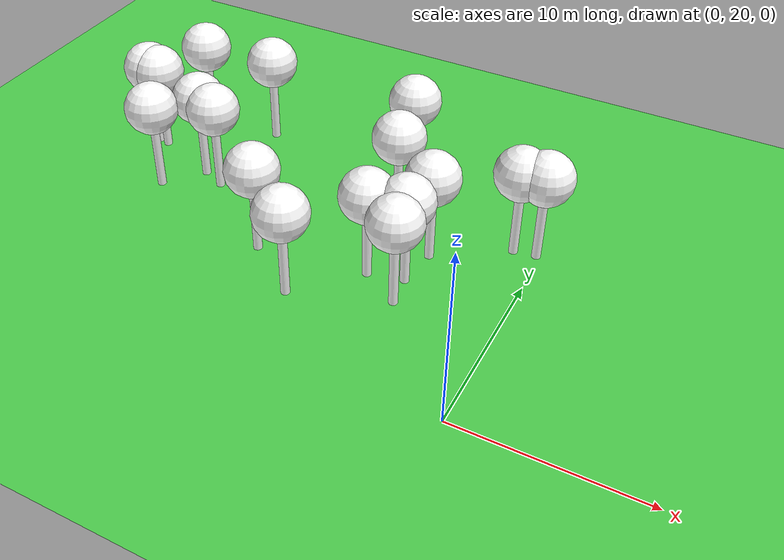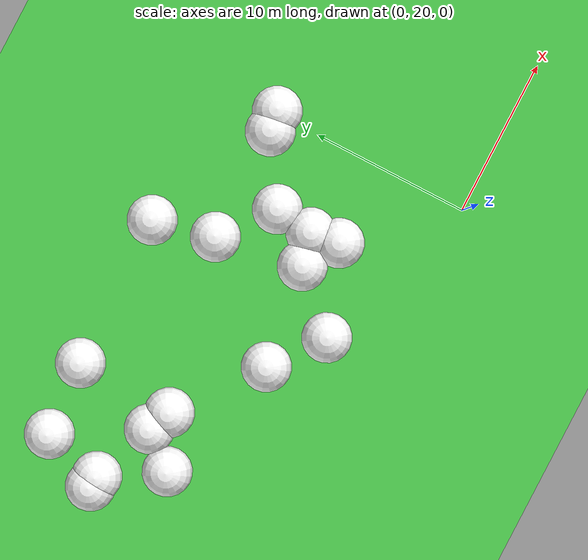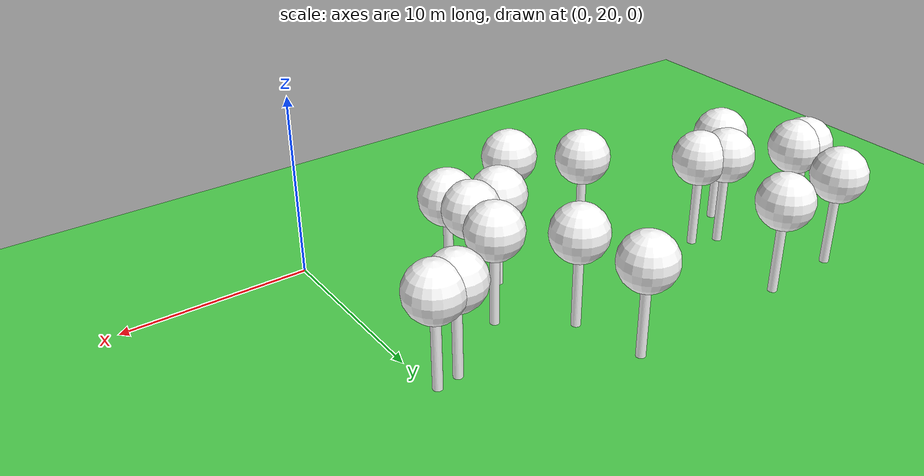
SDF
<sdf version="1.8">
 <world name="forest_world">
  <model name="tree_simple492">
   <static>1</static>
   <link name="link">
    <pose>0 0 0.1 0 -0 0</pose>
    <collision name="collision_trunk">
     <pose>0 0 2 0 -0 0</pose>
     <geometry><cylinder><radius>0.25</radius><length>4</length></cylinder></geometry>
    </collision>
    <collision name="collision_treetop">
     <pose>0 0 5.2 0 -0 0</pose>
     <geometry><sphere><radius>1.5</radius></sphere></geometry>
    </collision>
    <visual name="trunk_492">
     <pose>0 0 2 0 -0 0</pose>
     <geometry><cylinder><radius>0.25</radius><length>4</length></cylinder></geometry>
     <material>
      <ambient>0.5 0.5 0.5 1</ambient>
      <diffuse>1.0 1.0 1.0 1</diffuse>
      <specular>0.0 0.0 0.0 1</specular>
      <pbr>
       <metal>
        <albedo_map>file://textures/tree_simple_trunk.jpg</albedo_map>
        <metalness>0.0</metalness>
        <roughness>0.8</roughness>
       </metal>
      </pbr>
     </material>
    </visual>
    <visual name="treetop_492">
     <pose>0 0 5.2 0 -0 0</pose>
     <geometry><sphere><radius>1.5</radius></sphere></geometry>
     <material>
      <ambient>0.5 0.5 0.5 1</ambient>
      <diffuse>1.0 1.0 1.0 1</diffuse>
      <specular>0.0 0.0 0.0 1</specular>
      <pbr>
       <metal>
        <albedo_map>file://textures/tree_simple_treetop.jpg</albedo_map>
        <metalness>0.0</metalness>
        <roughness>0.9</roughness>
       </metal>
      </pbr>
     </material>
    </visual>
   </link>
   <pose>-7.60604313382 27.1336498888 0 0 -0 0</pose>
  </model>
  <model name="tree_simple477">
   <static>1</static>
   <link name="link">
    <pose>0 0 0.1 0 -0 0</pose>
    <collision name="collision_trunk">
     <pose>0 0 2 0 -0 0</pose>
     <geometry><cylinder><radius>0.25</radius><length>4</length></cylinder></geometry>
    </collision>
    <collision name="collision_treetop">
     <pose>0 0 5.2 0 -0 0</pose>
     <geometry><sphere><radius>1.5</radius></sphere></geometry>
    </collision>
    <visual name="trunk_477">
     <pose>0 0 2 0 -0 0</pose>
     <geometry><cylinder><radius>0.25</radius><length>4</length></cylinder></geometry>
     <material>
      <ambient>0.5 0.5 0.5 1</ambient>
      <diffuse>1.0 1.0 1.0 1</diffuse>
      <specular>0.0 0.0 0.0 1</specular>
      <pbr>
       <metal>
        <albedo_map>file://textures/tree_simple_trunk.jpg</albedo_map>
        <metalness>0.0</metalness>
        <roughness>0.8</roughness>
       </metal>
      </pbr>
     </material>
    </visual>
    <visual name="treetop_477">
     <pose>0 0 5.2 0 -0 0</pose>
     <geometry><sphere><radius>1.5</radius></sphere></geometry>
     <material>
      <ambient>0.5 0.5 0.5 1</ambient>
      <diffuse>1.0 1.0 1.0 1</diffuse>
      <specular>0.0 0.0 0.0 1</specular>
      <pbr>
       <metal>
        <albedo_map>file://textures/tree_simple_treetop.jpg</albedo_map>
        <metalness>0.0</metalness>
        <roughness>0.9</roughness>
       </metal>
      </pbr>
     </material>
    </visual>
   </link>
   <pose>-0.22927085135 32.6495918535 0 0 -0 0</pose>
  </model>
  <model name="tree_simple425">
   <static>1</static>
   <link name="link">
    <pose>0 0 0.1 0 -0 0</pose>
    <collision name="collision_trunk">
     <pose>0 0 2 0 -0 0</pose>
     <geometry><cylinder><radius>0.25</radius><length>4</length></cylinder></geometry>
    </collision>
    <collision name="collision_treetop">
     <pose>0 0 5.2 0 -0 0</pose>
     <geometry><sphere><radius>1.5</radius></sphere></geometry>
    </collision>
    <visual name="trunk_425">
     <pose>0 0 2 0 -0 0</pose>
     <geometry><cylinder><radius>0.25</radius><length>4</length></cylinder></geometry>
     <material>
      <ambient>0.5 0.5 0.5 1</ambient>
      <diffuse>1.0 1.0 1.0 1</diffuse>
      <specular>0.0 0.0 0.0 1</specular>
      <pbr>
       <metal>
        <albedo_map>file://textures/tree_simple_trunk.jpg</albedo_map>
        <metalness>0.0</metalness>
        <roughness>0.8</roughness>
       </metal>
      </pbr>
     </material>
    </visual>
    <visual name="treetop_425">
     <pose>0 0 5.2 0 -0 0</pose>
     <geometry><sphere><radius>1.5</radius></sphere></geometry>
     <material>
      <ambient>0.5 0.5 0.5 1</ambient>
      <diffuse>1.0 1.0 1.0 1</diffuse>
      <specular>0.0 0.0 0.0 1</specular>
      <pbr>
       <metal>
        <albedo_map>file://textures/tree_simple_treetop.jpg</albedo_map>
        <metalness>0.0</metalness>
        <roughness>0.9</roughness>
       </metal>
      </pbr>
     </material>
    </visual>
   </link>
   <pose>-9.294152574 36.1907172759 0 0 -0 0</pose>
  </model>
  <model name="tree_simple409">
   <static>1</static>
   <link name="link">
    <pose>0 0 0.1 0 -0 0</pose>
    <collision name="collision_trunk">
     <pose>0 0 2 0 -0 0</pose>
     <geometry><cylinder><radius>0.25</radius><length>4</length></cylinder></geometry>
    </collision>
    <collision name="collision_treetop">
     <pose>0 0 5.2 0 -0 0</pose>
     <geometry><sphere><radius>1.5</radius></sphere></geometry>
    </collision>
    <visual name="trunk_409">
     <pose>0 0 2 0 -0 0</pose>
     <geometry><cylinder><radius>0.25</radius><length>4</length></cylinder></geometry>
     <material>
      <ambient>0.5 0.5 0.5 1</ambient>
      <diffuse>1.0 1.0 1.0 1</diffuse>
      <specular>0.0 0.0 0.0 1</specular>
      <pbr>
       <metal>
        <albedo_map>file://textures/tree_simple_trunk.jpg</albedo_map>
        <metalness>0.0</metalness>
        <roughness>0.8</roughness>
       </metal>
      </pbr>
     </material>
    </visual>
    <visual name="treetop_409">
     <pose>0 0 5.2 0 -0 0</pose>
     <geometry><sphere><radius>1.5</radius></sphere></geometry>
     <material>
      <ambient>0.5 0.5 0.5 1</ambient>
      <diffuse>1.0 1.0 1.0 1</diffuse>
      <specular>0.0 0.0 0.0 1</specular>
      <pbr>
       <metal>
        <albedo_map>file://textures/tree_simple_treetop.jpg</albedo_map>
        <metalness>0.0</metalness>
        <roughness>0.9</roughness>
       </metal>
      </pbr>
     </material>
    </visual>
   </link>
   <pose>-23.2045481925 35.7189479207 0 0 -0 0</pose>
  </model>
  <model name="tree_simple398">
   <static>1</static>
   <link name="link">
    <pose>0 0 0.1 0 -0 0</pose>
    <collision name="collision_trunk">
     <pose>0 0 2 0 -0 0</pose>
     <geometry><cylinder><radius>0.25</radius><length>4</length></cylinder></geometry>
    </collision>
    <collision name="collision_treetop">
     <pose>0 0 5.2 0 -0 0</pose>
     <geometry><sphere><radius>1.5</radius></sphere></geometry>
    </collision>
    <visual name="trunk_398">
     <pose>0 0 2 0 -0 0</pose>
     <geometry><cylinder><radius>0.25</radius><length>4</length></cylinder></geometry>
     <material>
      <ambient>0.5 0.5 0.5 1</ambient>
      <diffuse>1.0 1.0 1.0 1</diffuse>
      <specular>0.0 0.0 0.0 1</specular>
      <pbr>
       <metal>
        <albedo_map>file://textures/tree_simple_trunk.jpg</albedo_map>
        <metalness>0.0</metalness>
        <roughness>0.8</roughness>
       </metal>
      </pbr>
     </material>
    </visual>
    <visual name="treetop_398">
     <pose>0 0 5.2 0 -0 0</pose>
     <geometry><sphere><radius>1.5</radius></sphere></geometry>
     <material>
      <ambient>0.5 0.5 0.5 1</ambient>
      <diffuse>1.0 1.0 1.0 1</diffuse>
      <specular>0.0 0.0 0.0 1</specular>
      <pbr>
       <metal>
        <albedo_map>file://textures/tree_simple_treetop.jpg</albedo_map>
        <metalness>0.0</metalness>
        <roughness>0.9</roughness>
       </metal>
      </pbr>
     </material>
    </visual>
   </link>
   <pose>-5.63129043723 27.5985943182 0 0 -0 0</pose>
  </model>
  <model name="tree_simple359">
   <static>1</static>
   <link name="link">
    <pose>0 0 0.1 0 -0 0</pose>
    <collision name="collision_trunk">
     <pose>0 0 2 0 -0 0</pose>
     <geometry><cylinder><radius>0.25</radius><length>4</length></cylinder></geometry>
    </collision>
    <collision name="collision_treetop">
     <pose>0 0 5.2 0 -0 0</pose>
     <geometry><sphere><radius>1.5</radius></sphere></geometry>
    </collision>
    <visual name="trunk_359">
     <pose>0 0 2 0 -0 0</pose>
     <geometry><cylinder><radius>0.25</radius><length>4</length></cylinder></geometry>
     <material>
      <ambient>0.5 0.5 0.5 1</ambient>
      <diffuse>1.0 1.0 1.0 1</diffuse>
      <specular>0.0 0.0 0.0 1</specular>
      <pbr>
       <metal>
        <albedo_map>file://textures/tree_simple_trunk.jpg</albedo_map>
        <metalness>0.0</metalness>
        <roughness>0.8</roughness>
       </metal>
      </pbr>
     </material>
    </visual>
    <visual name="treetop_359">
     <pose>0 0 5.2 0 -0 0</pose>
     <geometry><sphere><radius>1.5</radius></sphere></geometry>
     <material>
      <ambient>0.5 0.5 0.5 1</ambient>
      <diffuse>1.0 1.0 1.0 1</diffuse>
      <specular>0.0 0.0 0.0 1</specular>
      <pbr>
       <metal>
        <albedo_map>file://textures/tree_simple_treetop.jpg</albedo_map>
        <metalness>0.0</metalness>
        <roughness>0.9</roughness>
       </metal>
      </pbr>
     </material>
    </visual>
   </link>
   <pose>-20.2372130322 30.6626507403 0 0 -0 0</pose>
  </model>
  <model name="tree_simple353">
   <static>1</static>
   <link name="link">
    <pose>0 0 0.1 0 -0 0</pose>
    <collision name="collision_trunk">
     <pose>0 0 2 0 -0 0</pose>
     <geometry><cylinder><radius>0.25</radius><length>4</length></cylinder></geometry>
    </collision>
    <collision name="collision_treetop">
     <pose>0 0 5.2 0 -0 0</pose>
     <geometry><sphere><radius>1.5</radius></sphere></geometry>
    </collision>
    <visual name="trunk_353">
     <pose>0 0 2 0 -0 0</pose>
     <geometry><cylinder><radius>0.25</radius><length>4</length></cylinder></geometry>
     <material>
      <ambient>0.5 0.5 0.5 1</ambient>
      <diffuse>1.0 1.0 1.0 1</diffuse>
      <specular>0.0 0.0 0.0 1</specular>
      <pbr>
       <metal>
        <albedo_map>file://textures/tree_simple_trunk.jpg</albedo_map>
        <metalness>0.0</metalness>
        <roughness>0.8</roughness>
       </metal>
      </pbr>
     </material>
    </visual>
    <visual name="treetop_353">
     <pose>0 0 5.2 0 -0 0</pose>
     <geometry><sphere><radius>1.5</radius></sphere></geometry>
     <material>
      <ambient>0.5 0.5 0.5 1</ambient>
      <diffuse>1.0 1.0 1.0 1</diffuse>
      <specular>0.0 0.0 0.0 1</specular>
      <pbr>
       <metal>
        <albedo_map>file://textures/tree_simple_treetop.jpg</albedo_map>
        <metalness>0.0</metalness>
        <roughness>0.9</roughness>
       </metal>
      </pbr>
     </material>
    </visual>
   </link>
   <pose>-8.45318639894 32.4449291469 0 0 -0 0</pose>
  </model>
  <model name="tree_simple310">
   <static>1</static>
   <link name="link">
    <pose>0 0 0.1 0 -0 0</pose>
    <collision name="collision_trunk">
     <pose>0 0 2 0 -0 0</pose>
     <geometry><cylinder><radius>0.25</radius><length>4</length></cylinder></geometry>
    </collision>
    <collision name="collision_treetop">
     <pose>0 0 5.2 0 -0 0</pose>
     <geometry><sphere><radius>1.5</radius></sphere></geometry>
    </collision>
    <visual name="trunk_310">
     <pose>0 0 2 0 -0 0</pose>
     <geometry><cylinder><radius>0.25</radius><length>4</length></cylinder></geometry>
     <material>
      <ambient>0.5 0.5 0.5 1</ambient>
      <diffuse>1.0 1.0 1.0 1</diffuse>
      <specular>0.0 0.0 0.0 1</specular>
      <pbr>
       <metal>
        <albedo_map>file://textures/tree_simple_trunk.jpg</albedo_map>
        <metalness>0.0</metalness>
        <roughness>0.8</roughness>
       </metal>
      </pbr>
     </material>
    </visual>
    <visual name="treetop_310">
     <pose>0 0 5.2 0 -0 0</pose>
     <geometry><sphere><radius>1.5</radius></sphere></geometry>
     <material>
      <ambient>0.5 0.5 0.5 1</ambient>
      <diffuse>1.0 1.0 1.0 1</diffuse>
      <specular>0.0 0.0 0.0 1</specular>
      <pbr>
       <metal>
        <albedo_map>file://textures/tree_simple_treetop.jpg</albedo_map>
        <metalness>0.0</metalness>
        <roughness>0.9</roughness>
       </metal>
      </pbr>
     </material>
    </visual>
   </link>
   <pose>-24.1249967054 32.1060106323 0 0 -0 0</pose>
  </model>
  <model name="tree_simple299">
   <static>1</static>
   <link name="link">
    <pose>0 0 0.1 0 -0 0</pose>
    <collision name="collision_trunk">
     <pose>0 0 2 0 -0 0</pose>
     <geometry><cylinder><radius>0.25</radius><length>4</length></cylinder></geometry>
    </collision>
    <collision name="collision_treetop">
     <pose>0 0 5.2 0 -0 0</pose>
     <geometry><sphere><radius>1.5</radius></sphere></geometry>
    </collision>
    <visual name="trunk_299">
     <pose>0 0 2 0 -0 0</pose>
     <geometry><cylinder><radius>0.25</radius><length>4</length></cylinder></geometry>
     <material>
      <ambient>0.5 0.5 0.5 1</ambient>
      <diffuse>1.0 1.0 1.0 1</diffuse>
      <specular>0.0 0.0 0.0 1</specular>
      <pbr>
       <metal>
        <albedo_map>file://textures/tree_simple_trunk.jpg</albedo_map>
        <metalness>0.0</metalness>
        <roughness>0.8</roughness>
       </metal>
      </pbr>
     </material>
    </visual>
    <visual name="treetop_299">
     <pose>0 0 5.2 0 -0 0</pose>
     <geometry><sphere><radius>1.5</radius></sphere></geometry>
     <material>
      <ambient>0.5 0.5 0.5 1</ambient>
      <diffuse>1.0 1.0 1.0 1</diffuse>
      <specular>0.0 0.0 0.0 1</specular>
      <pbr>
       <metal>
        <albedo_map>file://textures/tree_simple_treetop.jpg</albedo_map>
        <metalness>0.0</metalness>
        <roughness>0.9</roughness>
       </metal>
      </pbr>
     </material>
    </visual>
   </link>
   <pose>-1.46806320409 32.459422197 0 0 -0 0</pose>
  </model>
  <model name="tree_simple183">
   <static>1</static>
   <link name="link">
    <pose>0 0 0.1 0 -0 0</pose>
    <collision name="collision_trunk">
     <pose>0 0 2 0 -0 0</pose>
     <geometry><cylinder><radius>0.25</radius><length>4</length></cylinder></geometry>
    </collision>
    <collision name="collision_treetop">
     <pose>0 0 5.2 0 -0 0</pose>
     <geometry><sphere><radius>1.5</radius></sphere></geometry>
    </collision>
    <visual name="trunk_183">
     <pose>0 0 2 0 -0 0</pose>
     <geometry><cylinder><radius>0.25</radius><length>4</length></cylinder></geometry>
     <material>
      <ambient>0.5 0.5 0.5 1</ambient>
      <diffuse>1.0 1.0 1.0 1</diffuse>
      <specular>0.0 0.0 0.0 1</specular>
      <pbr>
       <metal>
        <albedo_map>file://textures/tree_simple_trunk.jpg</albedo_map>
        <metalness>0.0</metalness>
        <roughness>0.8</roughness>
       </metal>
      </pbr>
     </material>
    </visual>
    <visual name="treetop_183">
     <pose>0 0 5.2 0 -0 0</pose>
     <geometry><sphere><radius>1.5</radius></sphere></geometry>
     <material>
      <ambient>0.5 0.5 0.5 1</ambient>
      <diffuse>1.0 1.0 1.0 1</diffuse>
      <specular>0.0 0.0 0.0 1</specular>
      <pbr>
       <metal>
        <albedo_map>file://textures/tree_simple_treetop.jpg</albedo_map>
        <metalness>0.0</metalness>
        <roughness>0.9</roughness>
       </metal>
      </pbr>
     </material>
    </visual>
   </link>
   <pose>-24.8051767245 32.1734283562 0 0 -0 0</pose>
  </model>
  <model name="tree_simple116">
   <static>1</static>
   <link name="link">
    <pose>0 0 0.1 0 -0 0</pose>
    <collision name="collision_trunk">
     <pose>0 0 2 0 -0 0</pose>
     <geometry><cylinder><radius>0.25</radius><length>4</length></cylinder></geometry>
    </collision>
    <collision name="collision_treetop">
     <pose>0 0 5.2 0 -0 0</pose>
     <geometry><sphere><radius>1.5</radius></sphere></geometry>
    </collision>
    <visual name="trunk_116">
     <pose>0 0 2 0 -0 0</pose>
     <geometry><cylinder><radius>0.25</radius><length>4</length></cylinder></geometry>
     <material>
      <ambient>0.5 0.5 0.5 1</ambient>
      <diffuse>1.0 1.0 1.0 1</diffuse>
      <specular>0.0 0.0 0.0 1</specular>
      <pbr>
       <metal>
        <albedo_map>file://textures/tree_simple_trunk.jpg</albedo_map>
        <metalness>0.0</metalness>
        <roughness>0.8</roughness>
       </metal>
      </pbr>
     </material>
    </visual>
    <visual name="treetop_116">
     <pose>0 0 5.2 0 -0 0</pose>
     <geometry><sphere><radius>1.5</radius></sphere></geometry>
     <material>
      <ambient>0.5 0.5 0.5 1</ambient>
      <diffuse>1.0 1.0 1.0 1</diffuse>
      <specular>0.0 0.0 0.0 1</specular>
      <pbr>
       <metal>
        <albedo_map>file://textures/tree_simple_treetop.jpg</albedo_map>
        <metalness>0.0</metalness>
        <roughness>0.9</roughness>
       </metal>
      </pbr>
     </material>
    </visual>
   </link>
   <pose>-18.6791358841 36.0330135093 0 0 -0 0</pose>
  </model>
  <model name="tree_simple110">
   <static>1</static>
   <link name="link">
    <pose>0 0 0.1 0 -0 0</pose>
    <collision name="collision_trunk">
     <pose>0 0 2 0 -0 0</pose>
     <geometry><cylinder><radius>0.25</radius><length>4</length></cylinder></geometry>
    </collision>
    <collision name="collision_treetop">
     <pose>0 0 5.2 0 -0 0</pose>
     <geometry><sphere><radius>1.5</radius></sphere></geometry>
    </collision>
    <visual name="trunk_110">
     <pose>0 0 2 0 -0 0</pose>
     <geometry><cylinder><radius>0.25</radius><length>4</length></cylinder></geometry>
     <material>
      <ambient>0.5 0.5 0.5 1</ambient>
      <diffuse>1.0 1.0 1.0 1</diffuse>
      <specular>0.0 0.0 0.0 1</specular>
      <pbr>
       <metal>
        <albedo_map>file://textures/tree_simple_trunk.jpg</albedo_map>
        <metalness>0.0</metalness>
        <roughness>0.8</roughness>
       </metal>
      </pbr>
     </material>
    </visual>
    <visual name="treetop_110">
     <pose>0 0 5.2 0 -0 0</pose>
     <geometry><sphere><radius>1.5</radius></sphere></geometry>
     <material>
      <ambient>0.5 0.5 0.5 1</ambient>
      <diffuse>1.0 1.0 1.0 1</diffuse>
      <specular>0.0 0.0 0.0 1</specular>
      <pbr>
       <metal>
        <albedo_map>file://textures/tree_simple_treetop.jpg</albedo_map>
        <metalness>0.0</metalness>
        <roughness>0.9</roughness>
       </metal>
      </pbr>
     </material>
    </visual>
   </link>
   <pose>-5.41034027226 25.8326134986 0 0 -0 0</pose>
  </model>
  <model name="tree_simple104">
   <static>1</static>
   <link name="link">
    <pose>0 0 0.1 0 -0 0</pose>
    <collision name="collision_trunk">
     <pose>0 0 2 0 -0 0</pose>
     <geometry><cylinder><radius>0.25</radius><length>4</length></cylinder></geometry>
    </collision>
    <collision name="collision_treetop">
     <pose>0 0 5.2 0 -0 0</pose>
     <geometry><sphere><radius>1.5</radius></sphere></geometry>
    </collision>
    <visual name="trunk_104">
     <pose>0 0 2 0 -0 0</pose>
     <geometry><cylinder><radius>0.25</radius><length>4</length></cylinder></geometry>
     <material>
      <ambient>0.5 0.5 0.5 1</ambient>
      <diffuse>1.0 1.0 1.0 1</diffuse>
      <specular>0.0 0.0 0.0 1</specular>
      <pbr>
       <metal>
        <albedo_map>file://textures/tree_simple_trunk.jpg</albedo_map>
        <metalness>0.0</metalness>
        <roughness>0.8</roughness>
       </metal>
      </pbr>
     </material>
    </visual>
    <visual name="treetop_104">
     <pose>0 0 5.2 0 -0 0</pose>
     <geometry><sphere><radius>1.5</radius></sphere></geometry>
     <material>
      <ambient>0.5 0.5 0.5 1</ambient>
      <diffuse>1.0 1.0 1.0 1</diffuse>
      <specular>0.0 0.0 0.0 1</specular>
      <pbr>
       <metal>
        <albedo_map>file://textures/tree_simple_treetop.jpg</albedo_map>
        <metalness>0.0</metalness>
        <roughness>0.9</roughness>
       </metal>
      </pbr>
     </material>
    </visual>
   </link>
   <pose>-21.9670509501 28.5770993943 0 0 -0 0</pose>
  </model>
  <model name="tree_simple77">
   <static>1</static>
   <link name="link">
    <pose>0 0 0.1 0 -0 0</pose>
    <collision name="collision_trunk">
     <pose>0 0 2 0 -0 0</pose>
     <geometry><cylinder><radius>0.25</radius><length>4</length></cylinder></geometry>
    </collision>
    <collision name="collision_treetop">
     <pose>0 0 5.2 0 -0 0</pose>
     <geometry><sphere><radius>1.5</radius></sphere></geometry>
    </collision>
    <visual name="trunk_77">
     <pose>0 0 2 0 -0 0</pose>
     <geometry><cylinder><radius>0.25</radius><length>4</length></cylinder></geometry>
     <material>
      <ambient>0.5 0.5 0.5 1</ambient>
      <diffuse>1.0 1.0 1.0 1</diffuse>
      <specular>0.0 0.0 0.0 1</specular>
      <pbr>
       <metal>
        <albedo_map>file://textures/tree_simple_trunk.jpg</albedo_map>
        <metalness>0.0</metalness>
        <roughness>0.8</roughness>
       </metal>
      </pbr>
     </material>
    </visual>
    <visual name="treetop_77">
     <pose>0 0 5.2 0 -0 0</pose>
     <geometry><sphere><radius>1.5</radius></sphere></geometry>
     <material>
      <ambient>0.5 0.5 0.5 1</ambient>
      <diffuse>1.0 1.0 1.0 1</diffuse>
      <specular>0.0 0.0 0.0 1</specular>
      <pbr>
       <metal>
        <albedo_map>file://textures/tree_simple_treetop.jpg</albedo_map>
        <metalness>0.0</metalness>
        <roughness>0.9</roughness>
       </metal>
      </pbr>
     </material>
    </visual>
   </link>
   <pose>-10.6651451359 23.9118826029 0 0 -0 0</pose>
  </model>
  <model name="tree_simple55">
   <static>1</static>
   <link name="link">
    <pose>0 0 0.1 0 -0 0</pose>
    <collision name="collision_trunk">
     <pose>0 0 2 0 -0 0</pose>
     <geometry><cylinder><radius>0.25</radius><length>4</length></cylinder></geometry>
    </collision>
    <collision name="collision_treetop">
     <pose>0 0 5.2 0 -0 0</pose>
     <geometry><sphere><radius>1.5</radius></sphere></geometry>
    </collision>
    <visual name="trunk_55">
     <pose>0 0 2 0 -0 0</pose>
     <geometry><cylinder><radius>0.25</radius><length>4</length></cylinder></geometry>
     <material>
      <ambient>0.5 0.5 0.5 1</ambient>
      <diffuse>1.0 1.0 1.0 1</diffuse>
      <specular>0.0 0.0 0.0 1</specular>
      <pbr>
       <metal>
        <albedo_map>file://textures/tree_simple_trunk.jpg</albedo_map>
        <metalness>0.0</metalness>
        <roughness>0.8</roughness>
       </metal>
      </pbr>
     </material>
    </visual>
    <visual name="treetop_55">
     <pose>0 0 5.2 0 -0 0</pose>
     <geometry><sphere><radius>1.5</radius></sphere></geometry>
     <material>
      <ambient>0.5 0.5 0.5 1</ambient>
      <diffuse>1.0 1.0 1.0 1</diffuse>
      <specular>0.0 0.0 0.0 1</specular>
      <pbr>
       <metal>
        <albedo_map>file://textures/tree_simple_treetop.jpg</albedo_map>
        <metalness>0.0</metalness>
        <roughness>0.9</roughness>
       </metal>
      </pbr>
     </material>
    </visual>
   </link>
   <pose>-18.841593574 30.0616232738 0 0 -0 0</pose>
  </model>
  <model name="tree_simple32">
   <static>1</static>
   <link name="link">
    <pose>0 0 0.1 0 -0 0</pose>
    <collision name="collision_trunk">
     <pose>0 0 2 0 -0 0</pose>
     <geometry><cylinder><radius>0.25</radius><length>4</length></cylinder></geometry>
    </collision>
    <collision name="collision_treetop">
     <pose>0 0 5.2 0 -0 0</pose>
     <geometry><sphere><radius>1.5</radius></sphere></geometry>
    </collision>
    <visual name="trunk_32">
     <pose>0 0 2 0 -0 0</pose>
     <geometry><cylinder><radius>0.25</radius><length>4</length></cylinder></geometry>
     <material>
      <ambient>0.5 0.5 0.5 1</ambient>
      <diffuse>1.0 1.0 1.0 1</diffuse>
      <specular>0.0 0.0 0.0 1</specular>
      <pbr>
       <metal>
        <albedo_map>file://textures/tree_simple_trunk.jpg</albedo_map>
        <metalness>0.0</metalness>
        <roughness>0.8</roughness>
       </metal>
      </pbr>
     </material>
    </visual>
    <visual name="treetop_32">
     <pose>0 0 5.2 0 -0 0</pose>
     <geometry><sphere><radius>1.5</radius></sphere></geometry>
     <material>
      <ambient>0.5 0.5 0.5 1</ambient>
      <diffuse>1.0 1.0 1.0 1</diffuse>
      <specular>0.0 0.0 0.0 1</specular>
      <pbr>
       <metal>
        <albedo_map>file://textures/tree_simple_treetop.jpg</albedo_map>
        <metalness>0.0</metalness>
        <roughness>0.9</roughness>
       </metal>
      </pbr>
     </material>
    </visual>
   </link>
   <pose>-5.32221302337 29.9695292924 0 0 -0 0</pose>
  </model>
  <model name="tree_simple17">
   <static>1</static>
   <link name="link">
    <pose>0 0 0.1 0 -0 0</pose>
    <collision name="collision_trunk">
     <pose>0 0 2 0 -0 0</pose>
     <geometry><cylinder><radius>0.25</radius><length>4</length></cylinder></geometry>
    </collision>
    <collision name="collision_treetop">
     <pose>0 0 5.2 0 -0 0</pose>
     <geometry><sphere><radius>1.5</radius></sphere></geometry>
    </collision>
    <visual name="trunk_17">
     <pose>0 0 2 0 -0 0</pose>
     <geometry><cylinder><radius>0.25</radius><length>4</length></cylinder></geometry>
     <material>
      <ambient>0.5 0.5 0.5 1</ambient>
      <diffuse>1.0 1.0 1.0 1</diffuse>
      <specular>0.0 0.0 0.0 1</specular>
      <pbr>
       <metal>
        <albedo_map>file://textures/tree_simple_trunk.jpg</albedo_map>
        <metalness>0.0</metalness>
        <roughness>0.8</roughness>
       </metal>
      </pbr>
     </material>
    </visual>
    <visual name="treetop_17">
     <pose>0 0 5.2 0 -0 0</pose>
     <geometry><sphere><radius>1.5</radius></sphere></geometry>
     <material>
      <ambient>0.5 0.5 0.5 1</ambient>
      <diffuse>1.0 1.0 1.0 1</diffuse>
      <specular>0.0 0.0 0.0 1</specular>
      <pbr>
       <metal>
        <albedo_map>file://textures/tree_simple_treetop.jpg</albedo_map>
        <metalness>0.0</metalness>
        <roughness>0.9</roughness>
       </metal>
      </pbr>
     </material>
    </visual>
   </link>
   <pose>-13.828816412 26.2649545803 0 0 -0 0</pose>
  </model>
  <model name="ground_plane">
   <static>true</static>
   <link name="link">
    <collision name="collision">
     <geometry><plane><normal>0 0 1</normal><size>250 250</size></plane></geometry>
     <surface><friction><ode><mu>1</mu><mu2>1</mu2></ode></friction></surface>
    </collision>
    <visual name="grass">
     <cast_shadows>false</cast_shadows>
     <geometry><mesh><uri>file://textures/grass_plane.dae</uri><scale>1 1 1</scale></mesh></geometry>
     <material>
      <ambient>0.2 0.6 0.2 1</ambient>
      <diffuse>0.3 0.8 0.3 1</diffuse>
      <specular>0.1 0.1 0.1 1</specular>
      <pbr>
       <metal>
        <albedo_map>file://textures/grass_seamless.jpg</albedo_map>
        <metalness>0.0</metalness>
        <roughness>0.9</roughness>
       </metal>
      </pbr>
     </material>
    </visual>
   </link>
  </model>
 </world>
</sdf>
